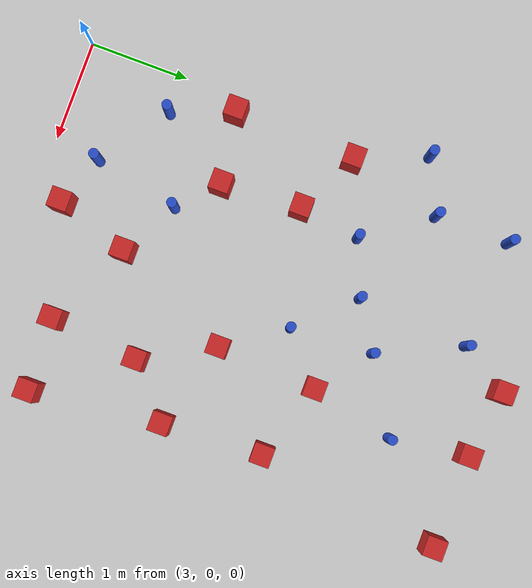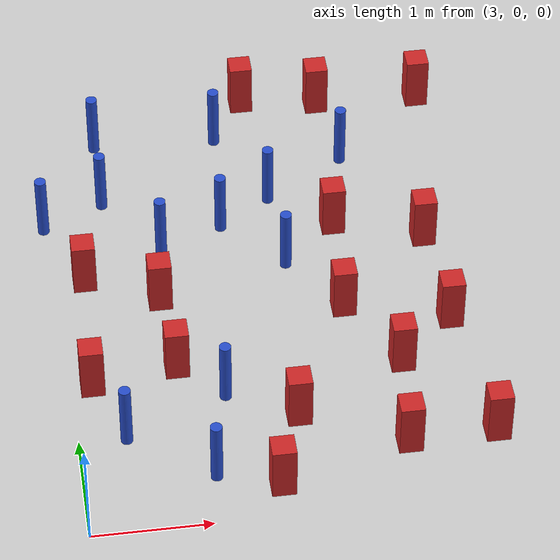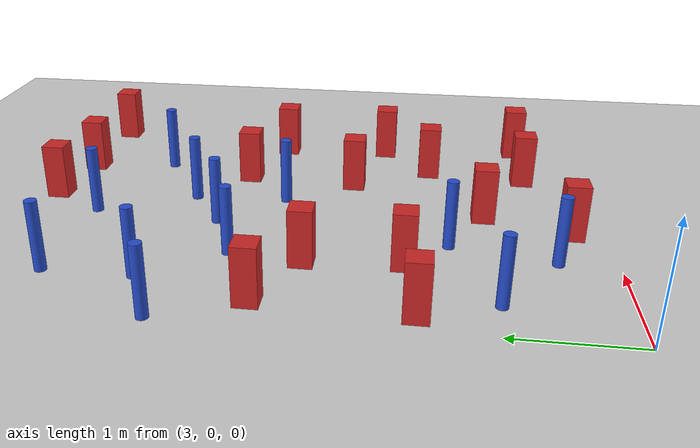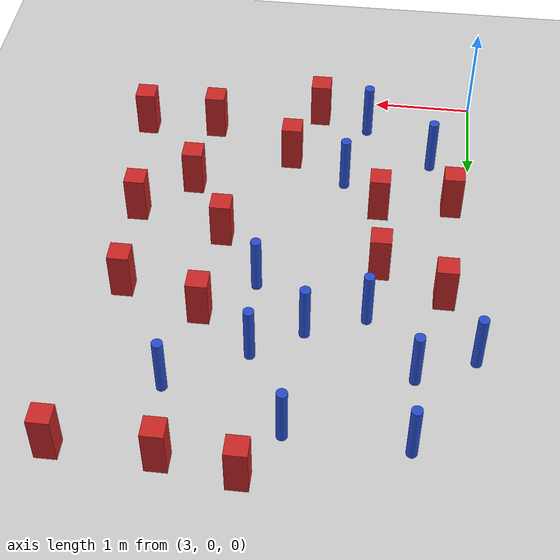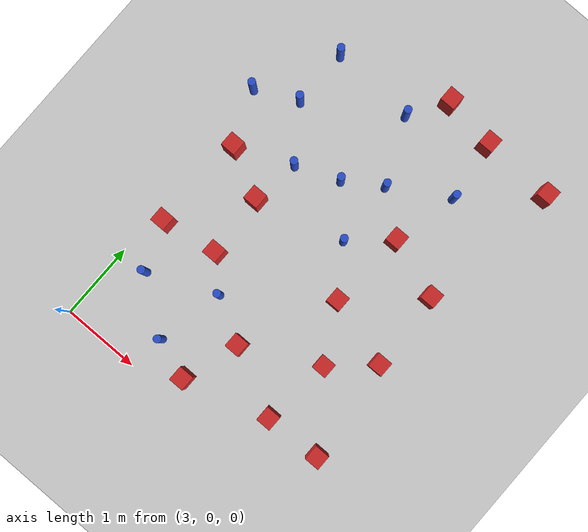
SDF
<sdf version="1.6">
 <world name="default">
  <model name="ground_plane">
   <static>1</static>
   <link name="link">
    <collision name="collision">
     <geometry><plane><normal>0 0 1</normal><size>100 100</size></plane></geometry>
     <surface><friction><ode><mu>100</mu><mu2>50</mu2></ode></friction></surface>
    </collision>
    <visual name="visual">
     <cast_shadows>0</cast_shadows>
     <geometry><plane><normal>0 0 1</normal><size>100 100</size></plane></geometry>
     <material>
      <ambient>1.0 1.0 1.0 1.0</ambient>
      <diffuse>0.8 0.8 0.8 1.0</diffuse>
      <specular>0.01 0.01 0.01 1.000000</specular>
     </material>
    </visual>
   </link>
  </model>
  <model name="square_post_obstacle0">
   <static>true</static>
   <pose>3.83624007222 2.51242688066 8.22691968438e-08 7.2212513382e-06 -7.54495500217e-07 2.29674213826e-05</pose>
   <link name="link">
    <pose>0 0 0.25 0 -0 0</pose>
    <inertial>
     <mass>100</mass>
     <inertia>
      <ixx>0.166667</ixx>
      <ixy>0</ixy>
      <ixz>0</ixz>
      <iyy>0.166667</iyy>
      <iyz>0</iyz>
      <izz>0.166667</izz>
     </inertia>
    </inertial>
    <collision name="collision"><geometry><box><size>.2 .2 .5</size></box></geometry></collision>
    <visual name="visual">
     <geometry><box><size>.2 .2 .5</size></box></geometry>
     <material>
      <script><name>Gazebo/Red</name><uri>file://media/materials/scripts/gazebo.material</uri></script>
     </material>
    </visual>
   </link>
  </model>
  <model name="square_post_obstacle2">
   <static>true</static>
   <pose>5.382815112 2.22522824394 8.22691968438e-08 7.2212513382e-06 -7.54495500217e-07 2.29674213826e-05</pose>
   <link name="link">
    <pose>0 0 0.25 0 -0 0</pose>
    <inertial>
     <mass>100</mass>
     <inertia>
      <ixx>0.166667</ixx>
      <ixy>0</ixy>
      <ixz>0</ixz>
      <iyy>0.166667</iyy>
      <iyz>0</iyz>
      <izz>0.166667</izz>
     </inertia>
    </inertial>
    <collision name="collision"><geometry><box><size>.2 .2 .5</size></box></geometry></collision>
    <visual name="visual">
     <geometry><box><size>.2 .2 .5</size></box></geometry>
     <material>
      <script><name>Gazebo/Red</name><uri>file://media/materials/scripts/gazebo.material</uri></script>
     </material>
    </visual>
   </link>
  </model>
  <model name="pole_obstacle2">
   <static>true</static>
   <pose>4.54405223998 4.48123757993 2.88873142074e-08 -9.90536690842e-09 4.60219948965e-07 -1.20965994976e-07</pose>
   <link name="link">
    <pose>0 0 0.3 0 -0 0</pose>
    <inertial>
     <mass>1</mass>
     <inertia><ixx>0.145833</ixx><ixy>0</ixy><ixz>0</ixz><iyy>0.145833</iyy><iyz>0</iyz><izz>0.125</izz></inertia>
    </inertial>
    <collision name="collision">
     <geometry><cylinder><radius>0.05</radius><length>.6</length></cylinder></geometry>
    </collision>
    <visual name="visual">
     <geometry><cylinder><radius>0.05</radius><length>.6</length></cylinder></geometry>
     <material>
      <script><name>Gazebo/Blue</name><uri>file://media/materials/scripts/gazebo.material</uri></script>
     </material>
    </visual>
   </link>
  </model>
  <model name="square_post_obstacle19">
   <static>true</static>
   <pose>4.84791716677 4.95255068701 8.22691968438e-08 7.2212513382e-06 -7.54495500217e-07 2.29674213826e-05</pose>
   <link name="link">
    <pose>0 0 0.25 0 -0 0</pose>
    <inertial>
     <mass>100</mass>
     <inertia>
      <ixx>0.166667</ixx>
      <ixy>0</ixy>
      <ixz>0</ixz>
      <iyy>0.166667</iyy>
      <iyz>0</iyz>
      <izz>0.166667</izz>
     </inertia>
    </inertial>
    <collision name="collision"><geometry><box><size>.2 .2 .5</size></box></geometry></collision>
    <visual name="visual">
     <geometry><box><size>.2 .2 .5</size></box></geometry>
     <material>
      <script><name>Gazebo/Red</name><uri>file://media/materials/scripts/gazebo.material</uri></script>
     </material>
    </visual>
   </link>
  </model>
  <model name="pole_obstacle42">
   <static>true</static>
   <pose>3.45222762329 4.52914695269 2.88873142074e-08 -9.90536689859e-09 4.60219948989e-07 -1.20965994961e-07</pose>
   <link name="link">
    <pose>0 0 0.3 0 -0 0</pose>
    <inertial>
     <mass>1</mass>
     <inertia><ixx>0.145833</ixx><ixy>0</ixy><ixz>0</ixz><iyy>0.145833</iyy><iyz>0</iyz><izz>0.125</izz></inertia>
    </inertial>
    <collision name="collision">
     <geometry><cylinder><radius>0.05</radius><length>.6</length></cylinder></geometry>
    </collision>
    <visual name="visual">
     <geometry><cylinder><radius>0.05</radius><length>.6</length></cylinder></geometry>
     <material>
      <script><name>Gazebo/Blue</name><uri>file://media/materials/scripts/gazebo.material</uri></script>
     </material>
    </visual>
   </link>
  </model>
  <model name="pole_obstacle49">
   <static>true</static>
   <pose>4.96978306461 2.81869666789 2.88873142074e-08 -9.90536690245e-09 4.6021994898e-07 -1.20965994966e-07</pose>
   <link name="link">
    <pose>0 0 0.3 0 -0 0</pose>
    <inertial>
     <mass>1</mass>
     <inertia><ixx>0.145833</ixx><ixy>0</ixy><ixz>0</ixz><iyy>0.145833</iyy><iyz>0</iyz><izz>0.125</izz></inertia>
    </inertial>
    <collision name="collision">
     <geometry><cylinder><radius>0.05</radius><length>.6</length></cylinder></geometry>
    </collision>
    <visual name="visual">
     <geometry><cylinder><radius>0.05</radius><length>.6</length></cylinder></geometry>
     <material>
      <script><name>Gazebo/Blue</name><uri>file://media/materials/scripts/gazebo.material</uri></script>
     </material>
    </visual>
   </link>
  </model>
  <model name="square_post_obstacle51">
   <static>true</static>
   <pose>3.16966110681 1.5908703172 8.22691968438e-08 7.2212513382e-06 -7.54495500217e-07 2.29674213826e-05</pose>
   <link name="link">
    <pose>0 0 0.25 0 -0 0</pose>
    <inertial>
     <mass>100</mass>
     <inertia>
      <ixx>0.166667</ixx>
      <ixy>0</ixy>
      <ixz>0</ixz>
      <iyy>0.166667</iyy>
      <iyz>0</iyz>
      <izz>0.166667</izz>
     </inertia>
    </inertial>
    <collision name="collision"><geometry><box><size>.2 .2 .5</size></box></geometry></collision>
    <visual name="visual">
     <geometry><box><size>.2 .2 .5</size></box></geometry>
     <material>
      <script><name>Gazebo/Red</name><uri>file://media/materials/scripts/gazebo.material</uri></script>
     </material>
    </visual>
   </link>
  </model>
  <model name="square_post_obstacle68">
   <static>true</static>
   <pose>5.53330720804 4.85079457492 8.22691968438e-08 7.2212513382e-06 -7.54495500217e-07 2.29674213826e-05</pose>
   <link name="link">
    <pose>0 0 0.25 0 -0 0</pose>
    <inertial>
     <mass>100</mass>
     <inertia>
      <ixx>0.166667</ixx>
      <ixy>0</ixy>
      <ixz>0</ixz>
      <iyy>0.166667</iyy>
      <iyz>0</iyz>
      <izz>0.166667</izz>
     </inertia>
    </inertial>
    <collision name="collision"><geometry><box><size>.2 .2 .5</size></box></geometry></collision>
    <visual name="visual">
     <geometry><box><size>.2 .2 .5</size></box></geometry>
     <material>
      <script><name>Gazebo/Red</name><uri>file://media/materials/scripts/gazebo.material</uri></script>
     </material>
    </visual>
   </link>
  </model>
  <model name="pole_obstacle73">
   <static>true</static>
   <pose>4.07469864643 0.484362611027 2.88873142074e-08 -9.90536689483e-09 4.60219948998e-07 -1.20965994956e-07</pose>
   <link name="link">
    <pose>0 0 0.3 0 -0 0</pose>
    <inertial>
     <mass>1</mass>
     <inertia><ixx>0.145833</ixx><ixy>0</ixy><ixz>0</ixz><iyy>0.145833</iyy><iyz>0</iyz><izz>0.125</izz></inertia>
    </inertial>
    <collision name="collision">
     <geometry><cylinder><radius>0.05</radius><length>.6</length></cylinder></geometry>
    </collision>
    <visual name="visual">
     <geometry><cylinder><radius>0.05</radius><length>.6</length></cylinder></geometry>
     <material>
      <script><name>Gazebo/Blue</name><uri>file://media/materials/scripts/gazebo.material</uri></script>
     </material>
    </visual>
   </link>
  </model>
  <model name="pole_obstacle98">
   <static>true</static>
   <pose>4.92634855674 3.65364517422 2.88873142074e-08 -9.90536690245e-09 4.6021994898e-07 -1.20965994966e-07</pose>
   <link name="link">
    <pose>0 0 0.3 0 -0 0</pose>
    <inertial>
     <mass>1</mass>
     <inertia><ixx>0.145833</ixx><ixy>0</ixy><ixz>0</ixz><iyy>0.145833</iyy><iyz>0</iyz><izz>0.125</izz></inertia>
    </inertial>
    <collision name="collision">
     <geometry><cylinder><radius>0.05</radius><length>.6</length></cylinder></geometry>
    </collision>
    <visual name="visual">
     <geometry><cylinder><radius>0.05</radius><length>.6</length></cylinder></geometry>
     <material>
      <script><name>Gazebo/Blue</name><uri>file://media/materials/scripts/gazebo.material</uri></script>
     </material>
    </visual>
   </link>
  </model>
  <model name="square_post_obstacle97">
   <static>true</static>
   <pose>3.88833576552 1.70321799984 8.22691968438e-08 7.2212513382e-06 -7.54495500217e-07 2.29674213826e-05</pose>
   <link name="link">
    <pose>0 0 0.25 0 -0 0</pose>
    <inertial>
     <mass>100</mass>
     <inertia>
      <ixx>0.166667</ixx>
      <ixy>0</ixy>
      <ixz>0</ixz>
      <iyy>0.166667</iyy>
      <iyz>0</iyz>
      <izz>0.166667</izz>
     </inertia>
    </inertial>
    <collision name="collision"><geometry><box><size>.2 .2 .5</size></box></geometry></collision>
    <visual name="visual">
     <geometry><box><size>.2 .2 .5</size></box></geometry>
     <material>
      <script><name>Gazebo/Red</name><uri>file://media/materials/scripts/gazebo.material</uri></script>
     </material>
    </visual>
   </link>
  </model>
  <model name="pole_obstacle110">
   <static>true</static>
   <pose>3.91531271678 3.13103008259 2.88873142074e-08 -9.90536690232e-09 4.6021994898e-07 -1.20965994968e-07</pose>
   <link name="link">
    <pose>0 0 0.3 0 -0 0</pose>
    <inertial>
     <mass>1</mass>
     <inertia><ixx>0.145833</ixx><ixy>0</ixy><ixz>0</ixz><iyy>0.145833</iyy><iyz>0</iyz><izz>0.125</izz></inertia>
    </inertial>
    <collision name="collision">
     <geometry><cylinder><radius>0.05</radius><length>.6</length></cylinder></geometry>
    </collision>
    <visual name="visual">
     <geometry><cylinder><radius>0.05</radius><length>.6</length></cylinder></geometry>
     <material>
      <script><name>Gazebo/Blue</name><uri>file://media/materials/scripts/gazebo.material</uri></script>
     </material>
    </visual>
   </link>
  </model>
  <model name="square_post_obstacle113">
   <static>true</static>
   <pose>6.26256643777 1.96622092662 8.22691968438e-08 7.2212513382e-06 -7.54495500217e-07 2.29674213826e-05</pose>
   <link name="link">
    <pose>0 0 0.25 0 -0 0</pose>
    <inertial>
     <mass>100</mass>
     <inertia>
      <ixx>0.166667</ixx>
      <ixy>0</ixy>
      <ixz>0</ixz>
      <iyy>0.166667</iyy>
      <iyz>0</iyz>
      <izz>0.166667</izz>
     </inertia>
    </inertial>
    <collision name="collision"><geometry><box><size>.2 .2 .5</size></box></geometry></collision>
    <visual name="visual">
     <geometry><box><size>.2 .2 .5</size></box></geometry>
     <material>
      <script><name>Gazebo/Red</name><uri>file://media/materials/scripts/gazebo.material</uri></script>
     </material>
    </visual>
   </link>
  </model>
  <model name="pole_obstacle128">
   <static>true</static>
   <pose>5.64203505612 4.08700018968 2.88873142074e-08 -9.90536690842e-09 4.60219948965e-07 -1.20965994976e-07</pose>
   <link name="link">
    <pose>0 0 0.3 0 -0 0</pose>
    <inertial>
     <mass>1</mass>
     <inertia><ixx>0.145833</ixx><ixy>0</ixy><ixz>0</ixz><iyy>0.145833</iyy><iyz>0</iyz><izz>0.125</izz></inertia>
    </inertial>
    <collision name="collision">
     <geometry><cylinder><radius>0.05</radius><length>.6</length></cylinder></geometry>
    </collision>
    <visual name="visual">
     <geometry><cylinder><radius>0.05</radius><length>.6</length></cylinder></geometry>
     <material>
      <script><name>Gazebo/Blue</name><uri>file://media/materials/scripts/gazebo.material</uri></script>
     </material>
    </visual>
   </link>
  </model>
  <model name="square_post_obstacle114">
   <static>true</static>
   <pose>6.46413071267 4.8251905256 8.22691968438e-08 7.2212513382e-06 -7.54495500217e-07 2.29674213826e-05</pose>
   <link name="link">
    <pose>0 0 0.25 0 -0 0</pose>
    <inertial>
     <mass>100</mass>
     <inertia>
      <ixx>0.166667</ixx>
      <ixy>0</ixy>
      <ixz>0</ixz>
      <iyy>0.166667</iyy>
      <iyz>0</iyz>
      <izz>0.166667</izz>
     </inertia>
    </inertial>
    <collision name="collision"><geometry><box><size>.2 .2 .5</size></box></geometry></collision>
    <visual name="visual">
     <geometry><box><size>.2 .2 .5</size></box></geometry>
     <material>
      <script><name>Gazebo/Red</name><uri>file://media/materials/scripts/gazebo.material</uri></script>
     </material>
    </visual>
   </link>
  </model>
  <model name="square_post_obstacle115">
   <static>true</static>
   <pose>6.20726638023 2.98246089201 8.22691968438e-08 7.2212513382e-06 -7.54495500217e-07 2.29674213826e-05</pose>
   <link name="link">
    <pose>0 0 0.25 0 -0 0</pose>
    <inertial>
     <mass>100</mass>
     <inertia>
      <ixx>0.166667</ixx>
      <ixy>0</ixy>
      <ixz>0</ixz>
      <iyy>0.166667</iyy>
      <iyz>0</iyz>
      <izz>0.166667</izz>
     </inertia>
    </inertial>
    <collision name="collision"><geometry><box><size>.2 .2 .5</size></box></geometry></collision>
    <visual name="visual">
     <geometry><box><size>.2 .2 .5</size></box></geometry>
     <material>
      <script><name>Gazebo/Red</name><uri>file://media/materials/scripts/gazebo.material</uri></script>
     </material>
    </visual>
   </link>
  </model>
  <model name="square_post_obstacle134">
   <static>true</static>
   <pose>4.82399494446 1.03815677405 8.22691968438e-08 7.2212513382e-06 -7.54495500217e-07 2.29674213826e-05</pose>
   <link name="link">
    <pose>0 0 0.25 0 -0 0</pose>
    <inertial>
     <mass>100</mass>
     <inertia>
      <ixx>0.166667</ixx>
      <ixy>0</ixy>
      <ixz>0</ixz>
      <iyy>0.166667</iyy>
      <iyz>0</iyz>
      <izz>0.166667</izz>
     </inertia>
    </inertial>
    <collision name="collision"><geometry><box><size>.2 .2 .5</size></box></geometry></collision>
    <visual name="visual">
     <geometry><box><size>.2 .2 .5</size></box></geometry>
     <material>
      <script><name>Gazebo/Red</name><uri>file://media/materials/scripts/gazebo.material</uri></script>
     </material>
    </visual>
   </link>
  </model>
  <model name="pole_obstacle145">
   <static>true</static>
   <pose>3.45163261709 3.77494347246 2.88873142074e-08 -9.90536690232e-09 4.6021994898e-07 -1.20965994968e-07</pose>
   <link name="link">
    <pose>0 0 0.3 0 -0 0</pose>
    <inertial>
     <mass>1</mass>
     <inertia><ixx>0.145833</ixx><ixy>0</ixy><ixz>0</ixz><iyy>0.145833</iyy><iyz>0</iyz><izz>0.125</izz></inertia>
    </inertial>
    <collision name="collision">
     <geometry><cylinder><radius>0.05</radius><length>.6</length></cylinder></geometry>
    </collision>
    <visual name="visual">
     <geometry><cylinder><radius>0.05</radius><length>.6</length></cylinder></geometry>
     <material>
      <script><name>Gazebo/Blue</name><uri>file://media/materials/scripts/gazebo.material</uri></script>
     </material>
    </visual>
   </link>
  </model>
  <model name="square_post_obstacle149">
   <static>true</static>
   <pose>4.58742224713 0.311804804169 8.22691968438e-08 7.2212513382e-06 -7.54495500217e-07 2.29674213826e-05</pose>
   <link name="link">
    <pose>0 0 0.25 0 -0 0</pose>
    <inertial>
     <mass>100</mass>
     <inertia>
      <ixx>0.166667</ixx>
      <ixy>0</ixy>
      <ixz>0</ixz>
      <iyy>0.166667</iyy>
      <iyz>0</iyz>
      <izz>0.166667</izz>
     </inertia>
    </inertial>
    <collision name="collision"><geometry><box><size>.2 .2 .5</size></box></geometry></collision>
    <visual name="visual">
     <geometry><box><size>.2 .2 .5</size></box></geometry>
     <material>
      <script><name>Gazebo/Red</name><uri>file://media/materials/scripts/gazebo.material</uri></script>
     </material>
    </visual>
   </link>
  </model>
  <model name="square_post_obstacle155">
   <static>true</static>
   <pose>3.21469308663 2.82212066429 8.22691968438e-08 7.2212513382e-06 -7.54495500217e-07 2.29674213826e-05</pose>
   <link name="link">
    <pose>0 0 0.25 0 -0 0</pose>
    <inertial>
     <mass>100</mass>
     <inertia>
      <ixx>0.166667</ixx>
      <ixy>0</ixy>
      <ixz>0</ixz>
      <iyy>0.166667</iyy>
      <iyz>0</iyz>
      <izz>0.166667</izz>
     </inertia>
    </inertial>
    <collision name="collision"><geometry><box><size>.2 .2 .5</size></box></geometry></collision>
    <visual name="visual">
     <geometry><box><size>.2 .2 .5</size></box></geometry>
     <material>
      <script><name>Gazebo/Red</name><uri>file://media/materials/scripts/gazebo.material</uri></script>
     </material>
    </visual>
   </link>
  </model>
  <model name="square_post_obstacle166">
   <static>true</static>
   <pose>6.40855223879 0.653127847394 8.22691968438e-08 7.2212513382e-06 -7.54495500217e-07 2.29674213826e-05</pose>
   <link name="link">
    <pose>0 0 0.25 0 -0 0</pose>
    <inertial>
     <mass>100</mass>
     <inertia>
      <ixx>0.166667</ixx>
      <ixy>0</ixy>
      <ixz>0</ixz>
      <iyy>0.166667</iyy>
      <iyz>0</iyz>
      <izz>0.166667</izz>
     </inertia>
    </inertial>
    <collision name="collision"><geometry><box><size>.2 .2 .5</size></box></geometry></collision>
    <visual name="visual">
     <geometry><box><size>.2 .2 .5</size></box></geometry>
     <material>
      <script><name>Gazebo/Red</name><uri>file://media/materials/scripts/gazebo.material</uri></script>
     </material>
    </visual>
   </link>
  </model>
  <model name="square_post_obstacle168">
   <static>true</static>
   <pose>5.76988013364 1.51987353903 8.22691968438e-08 7.2212513382e-06 -7.54495500217e-07 2.29674213826e-05</pose>
   <link name="link">
    <pose>0 0 0.25 0 -0 0</pose>
    <inertial>
     <mass>100</mass>
     <inertia>
      <ixx>0.166667</ixx>
      <ixy>0</ixy>
      <ixz>0</ixz>
      <iyy>0.166667</iyy>
      <iyz>0</iyz>
      <izz>0.166667</izz>
     </inertia>
    </inertial>
    <collision name="collision"><geometry><box><size>.2 .2 .5</size></box></geometry></collision>
    <visual name="visual">
     <geometry><box><size>.2 .2 .5</size></box></geometry>
     <material>
      <script><name>Gazebo/Red</name><uri>file://media/materials/scripts/gazebo.material</uri></script>
     </material>
    </visual>
   </link>
  </model>
  <model name="square_post_obstacle174">
   <static>true</static>
   <pose>5.44296839167 3.23845282231 8.22691968438e-08 7.2212513382e-06 -7.54495500217e-07 2.29674213826e-05</pose>
   <link name="link">
    <pose>0 0 0.25 0 -0 0</pose>
    <inertial>
     <mass>100</mass>
     <inertia>
      <ixx>0.166667</ixx>
      <ixy>0</ixy>
      <ixz>0</ixz>
      <iyy>0.166667</iyy>
      <iyz>0</iyz>
      <izz>0.166667</izz>
     </inertia>
    </inertial>
    <collision name="collision"><geometry><box><size>.2 .2 .5</size></box></geometry></collision>
    <visual name="visual">
     <geometry><box><size>.2 .2 .5</size></box></geometry>
     <material>
      <script><name>Gazebo/Red</name><uri>file://media/materials/scripts/gazebo.material</uri></script>
     </material>
    </visual>
   </link>
  </model>
  <model name="square_post_obstacle181">
   <static>true</static>
   <pose>5.67575521087 0.626333127229 8.22691968438e-08 7.2212513382e-06 -7.54495500217e-07 2.29674213826e-05</pose>
   <link name="link">
    <pose>0 0 0.25 0 -0 0</pose>
    <inertial>
     <mass>100</mass>
     <inertia>
      <ixx>0.166667</ixx>
      <ixy>0</ixy>
      <ixz>0</ixz>
      <iyy>0.166667</iyy>
      <iyz>0</iyz>
      <izz>0.166667</izz>
     </inertia>
    </inertial>
    <collision name="collision"><geometry><box><size>.2 .2 .5</size></box></geometry></collision>
    <visual name="visual">
     <geometry><box><size>.2 .2 .5</size></box></geometry>
     <material>
      <script><name>Gazebo/Red</name><uri>file://media/materials/scripts/gazebo.material</uri></script>
     </material>
    </visual>
   </link>
  </model>
  <model name="pole_obstacle197">
   <static>true</static>
   <pose>4.2555092108 1.34433406465 2.88873142074e-08 -9.90536689445e-09 4.60219948999e-07 -1.20965994956e-07</pose>
   <link name="link">
    <pose>0 0 0.3 0 -0 0</pose>
    <inertial>
     <mass>1</mass>
     <inertia><ixx>0.145833</ixx><ixy>0</ixy><ixz>0</ixz><iyy>0.145833</iyy><iyz>0</iyz><izz>0.125</izz></inertia>
    </inertial>
    <collision name="collision">
     <geometry><cylinder><radius>0.05</radius><length>.6</length></cylinder></geometry>
    </collision>
    <visual name="visual">
     <geometry><cylinder><radius>0.05</radius><length>.6</length></cylinder></geometry>
     <material>
      <script><name>Gazebo/Blue</name><uri>file://media/materials/scripts/gazebo.material</uri></script>
     </material>
    </visual>
   </link>
  </model>
  <model name="pole_obstacle200">
   <static>true</static>
   <pose>4.46545848802 3.35348977989 2.88873142074e-08 -9.90536690245e-09 4.6021994898e-07 -1.20965994966e-07</pose>
   <link name="link">
    <pose>0 0 0.3 0 -0 0</pose>
    <inertial>
     <mass>1</mass>
     <inertia><ixx>0.145833</ixx><ixy>0</ixy><ixz>0</ixz><iyy>0.145833</iyy><iyz>0</iyz><izz>0.125</izz></inertia>
    </inertial>
    <collision name="collision">
     <geometry><cylinder><radius>0.05</radius><length>.6</length></cylinder></geometry>
    </collision>
    <visual name="visual">
     <geometry><cylinder><radius>0.05</radius><length>.6</length></cylinder></geometry>
     <material>
      <script><name>Gazebo/Blue</name><uri>file://media/materials/scripts/gazebo.material</uri></script>
     </material>
    </visual>
   </link>
  </model>
  <model name="pole_obstacle206">
   <static>true</static>
   <pose>2.91502409371 3.52025512457 2.88873142074e-08 -9.90536690232e-09 4.6021994898e-07 -1.20965994968e-07</pose>
   <link name="link">
    <pose>0 0 0.3 0 -0 0</pose>
    <inertial>
     <mass>1</mass>
     <inertia><ixx>0.145833</ixx><ixy>0</ixy><ixz>0</ixz><iyy>0.145833</iyy><iyz>0</iyz><izz>0.125</izz></inertia>
    </inertial>
    <collision name="collision">
     <geometry><cylinder><radius>0.05</radius><length>.6</length></cylinder></geometry>
    </collision>
    <visual name="visual">
     <geometry><cylinder><radius>0.05</radius><length>.6</length></cylinder></geometry>
     <material>
      <script><name>Gazebo/Blue</name><uri>file://media/materials/scripts/gazebo.material</uri></script>
     </material>
    </visual>
   </link>
  </model>
  <model name="pole_obstacle221">
   <static>true</static>
   <pose>3.39392791048 0.973931104204 2.88873142074e-08 -9.90536689701e-09 4.60219948992e-07 -1.20965994959e-07</pose>
   <link name="link">
    <pose>0 0 0.3 0 -0 0</pose>
    <inertial>
     <mass>1</mass>
     <inertia><ixx>0.145833</ixx><ixy>0</ixy><ixz>0</ixz><iyy>0.145833</iyy><iyz>0</iyz><izz>0.125</izz></inertia>
    </inertial>
    <collision name="collision">
     <geometry><cylinder><radius>0.05</radius><length>.6</length></cylinder></geometry>
    </collision>
    <visual name="visual">
     <geometry><cylinder><radius>0.05</radius><length>.6</length></cylinder></geometry>
     <material>
      <script><name>Gazebo/Blue</name><uri>file://media/materials/scripts/gazebo.material</uri></script>
     </material>
    </visual>
   </link>
  </model>
 </world>
</sdf>
